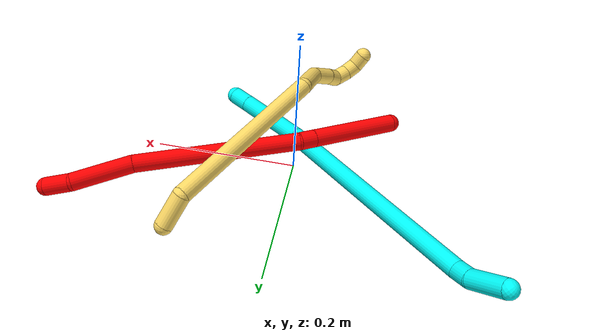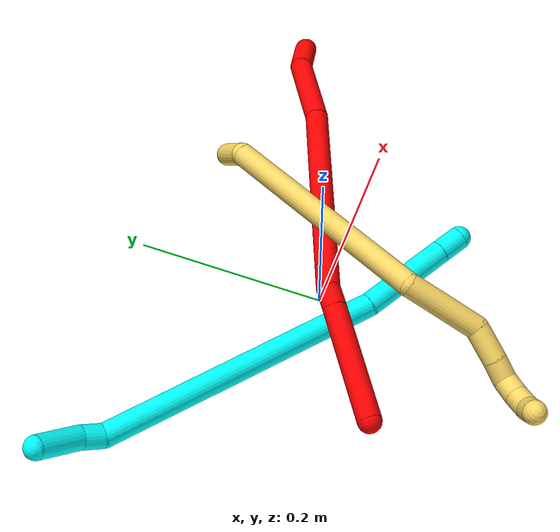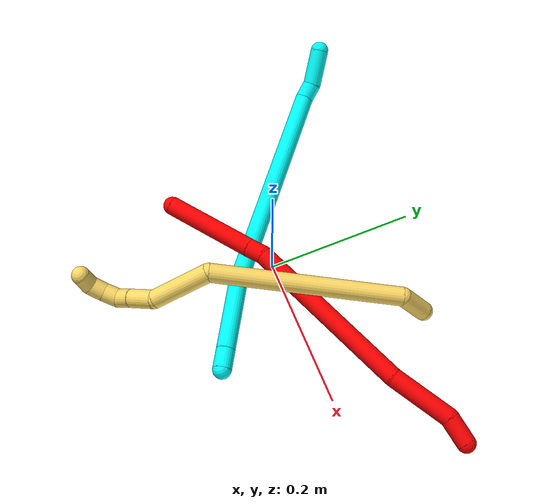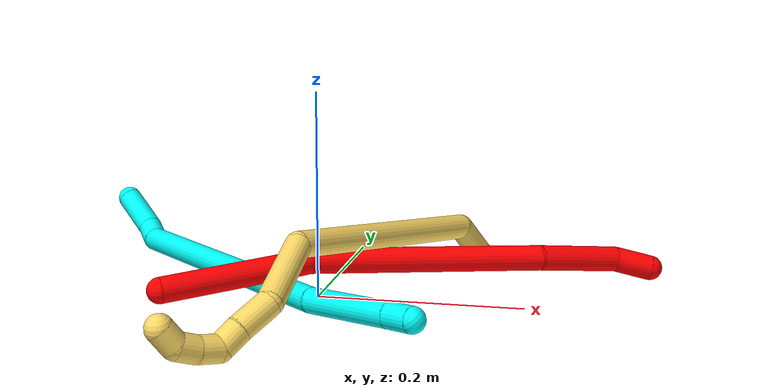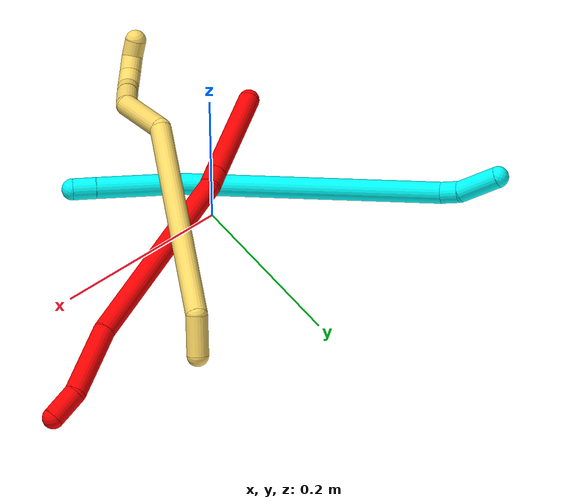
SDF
<sdf version="1.7">
 <world name="default">
  <model name="2">
   <static>0</static>
   <link name="2">
    <collision name="collision-cylinder-e_1_1_4">
     <pose>-0.013069 -0.011242 -0.006573 2.09987 -0.787182 -1.25307</pose>
     <geometry><cylinder><radius>0.0125</radius><length>0.0369</length></cylinder></geometry>
     <surface>
      <friction><ode><mu>1.16</mu><mu2>1.16</mu2><slip1>0</slip1><slip2>0</slip2></ode></friction>
      <contact><ode><kp>1e+06</kp><kd>1</kd><max_vel>0</max_vel><min_depth>0.001</min_depth></ode></contact>
     </surface>
    </collision>
    <visual name="visual-cylinder-e_1_1_4">
     <pose>-0.013069 -0.011242 -0.006573 2.09987 -0.787182 -1.25307</pose>
     <geometry><cylinder><radius>0.0125</radius><length>0.0369</length></cylinder></geometry>
     <material><ambient>1 0 0 1</ambient></material>
    </visual>
    <collision name="collision-cylinder-e_2_4_5">
     <pose>-0.06353 -0.034182 -0.02927 2.51396 -1.08129 -2.15036</pose>
     <geometry><cylinder><radius>0.0125</radius><length>0.084734</length></cylinder></geometry>
     <surface>
      <friction><ode><mu>1.16</mu><mu2>1.16</mu2><slip1>0</slip1><slip2>0</slip2></ode></friction>
      <contact><ode><kp>1e+06</kp><kd>1</kd><max_vel>0</max_vel><min_depth>0.001</min_depth></ode></contact>
     </surface>
    </collision>
    <visual name="visual-cylinder-e_2_4_5">
     <pose>-0.06353 -0.034182 -0.02927 2.51396 -1.08129 -2.15036</pose>
     <geometry><cylinder><radius>0.0125</radius><length>0.084734</length></cylinder></geometry>
     <material><ambient>1 0 0 1</ambient></material>
    </visual>
    <collision name="collision-cylinder-e_3_5_6">
     <pose>-0.202284 -0.091948 -0.075054 2.14281 -1.07525 -1.65954</pose>
     <geometry><cylinder><radius>0.0125</radius><length>0.230446</length></cylinder></geometry>
     <surface>
      <friction><ode><mu>1.16</mu><mu2>1.16</mu2><slip1>0</slip1><slip2>0</slip2></ode></friction>
      <contact><ode><kp>1e+06</kp><kd>1</kd><max_vel>0</max_vel><min_depth>0.001</min_depth></ode></contact>
     </surface>
    </collision>
    <visual name="visual-cylinder-e_3_5_6">
     <pose>-0.202284 -0.091948 -0.075054 2.14281 -1.07525 -1.65954</pose>
     <geometry><cylinder><radius>0.0125</radius><length>0.230446</length></cylinder></geometry>
     <material><ambient>1 0 0 1</ambient></material>
    </visual>
    <collision name="collision-cylinder-e_4_6_7">
     <pose>-0.314603 -0.139613 -0.10736 2.59882 -1.29578 -2.43701</pose>
     <geometry><cylinder><radius>0.0125</radius><length>0.022768</length></cylinder></geometry>
     <surface>
      <friction><ode><mu>1.16</mu><mu2>1.16</mu2><slip1>0</slip1><slip2>0</slip2></ode></friction>
      <contact><ode><kp>1e+06</kp><kd>1</kd><max_vel>0</max_vel><min_depth>0.001</min_depth></ode></contact>
     </surface>
    </collision>
    <visual name="visual-cylinder-e_4_6_7">
     <pose>-0.314603 -0.139613 -0.10736 2.59882 -1.29578 -2.43701</pose>
     <geometry><cylinder><radius>0.0125</radius><length>0.022768</length></cylinder></geometry>
     <material><ambient>1 0 0 1</ambient></material>
    </visual>
    <collision name="collision-cylinder-e_5_7_2">
     <pose>-0.385432 -0.15159 -0.12495 2.53448 -1.27578 -2.34197</pose>
     <geometry><cylinder><radius>0.0125</radius><length>0.125152</length></cylinder></geometry>
     <surface>
      <friction><ode><mu>1.16</mu><mu2>1.16</mu2><slip1>0</slip1><slip2>0</slip2></ode></friction>
      <contact><ode><kp>1e+06</kp><kd>1</kd><max_vel>0</max_vel><min_depth>0.001</min_depth></ode></contact>
     </surface>
    </collision>
    <visual name="visual-cylinder-e_5_7_2">
     <pose>-0.385432 -0.15159 -0.12495 2.53448 -1.27578 -2.34197</pose>
     <geometry><cylinder><radius>0.0125</radius><length>0.125152</length></cylinder></geometry>
     <material><ambient>1 0 0 1</ambient></material>
    </visual>
    <collision name="collision-sphere-2">
     <pose>-0.445305 -0.16197 -0.139893 0 -0 0</pose>
     <geometry><sphere><radius>0.0125</radius></sphere></geometry>
     <surface>
      <friction><ode><mu>1.16</mu><mu2>1.16</mu2><slip1>0</slip1><slip2>0</slip2></ode></friction>
      <contact><ode><kp>1e+06</kp><kd>1</kd><max_vel>0</max_vel><min_depth>0.001</min_depth></ode></contact>
     </surface>
    </collision>
    <visual name="visual-sphere-2">
     <pose>-0.445305 -0.16197 -0.139893 0 -0 0</pose>
     <geometry><sphere><radius>0.0125</radius></sphere></geometry>
     <material><ambient>1 0 0 1</ambient></material>
    </visual>
    <collision name="collision-sphere-7">
     <pose>-0.325559 -0.14121 -0.110007 0 -0 0</pose>
     <geometry><sphere><radius>0.0125</radius></sphere></geometry>
     <surface>
      <friction><ode><mu>1.16</mu><mu2>1.16</mu2><slip1>0</slip1><slip2>0</slip2></ode></friction>
      <contact><ode><kp>1e+06</kp><kd>1</kd><max_vel>0</max_vel><min_depth>0.001</min_depth></ode></contact>
     </surface>
    </collision>
    <visual name="visual-sphere-7">
     <pose>-0.325559 -0.14121 -0.110007 0 -0 0</pose>
     <geometry><sphere><radius>0.0125</radius></sphere></geometry>
     <material><ambient>1 0 0 1</ambient></material>
    </visual>
    <collision name="collision-sphere-6">
     <pose>-0.303647 -0.138017 -0.104713 0 -0 0</pose>
     <geometry><sphere><radius>0.0125</radius></sphere></geometry>
     <surface>
      <friction><ode><mu>1.16</mu><mu2>1.16</mu2><slip1>0</slip1><slip2>0</slip2></ode></friction>
      <contact><ode><kp>1e+06</kp><kd>1</kd><max_vel>0</max_vel><min_depth>0.001</min_depth></ode></contact>
     </surface>
    </collision>
    <visual name="visual-sphere-6">
     <pose>-0.303647 -0.138017 -0.104713 0 -0 0</pose>
     <geometry><sphere><radius>0.0125</radius></sphere></geometry>
     <material><ambient>1 0 0 1</ambient></material>
    </visual>
    <collision name="collision-sphere-5">
     <pose>-0.100921 -0.04588 -0.045394 0 -0 0</pose>
     <geometry><sphere><radius>0.0125</radius></sphere></geometry>
     <surface>
      <friction><ode><mu>1.16</mu><mu2>1.16</mu2><slip1>0</slip1><slip2>0</slip2></ode></friction>
      <contact><ode><kp>1e+06</kp><kd>1</kd><max_vel>0</max_vel><min_depth>0.001</min_depth></ode></contact>
     </surface>
    </collision>
    <visual name="visual-sphere-5">
     <pose>-0.100921 -0.04588 -0.045394 0 -0 0</pose>
     <geometry><sphere><radius>0.0125</radius></sphere></geometry>
     <material><ambient>1 0 0 1</ambient></material>
    </visual>
    <collision name="collision-sphere-1">
     <geometry><sphere><radius>0.0125</radius></sphere></geometry>
     <surface>
      <friction><ode><mu>1.16</mu><mu2>1.16</mu2><slip1>0</slip1><slip2>0</slip2></ode></friction>
      <contact><ode><kp>1e+06</kp><kd>1</kd><max_vel>0</max_vel><min_depth>0.001</min_depth></ode></contact>
     </surface>
    </collision>
    <visual name="visual-sphere-1">
     <geometry><sphere><radius>0.0125</radius></sphere></geometry>
     <material><ambient>1 0 0 1</ambient></material>
    </visual>
    <collision name="collision-sphere-4">
     <pose>-0.026138 -0.022484 -0.013146 0 -0 0</pose>
     <geometry><sphere><radius>0.0125</radius></sphere></geometry>
     <surface>
      <friction><ode><mu>1.16</mu><mu2>1.16</mu2><slip1>0</slip1><slip2>0</slip2></ode></friction>
      <contact><ode><kp>1e+06</kp><kd>1</kd><max_vel>0</max_vel><min_depth>0.001</min_depth></ode></contact>
     </surface>
    </collision>
    <visual name="visual-sphere-4">
     <pose>-0.026138 -0.022484 -0.013146 0 -0 0</pose>
     <geometry><sphere><radius>0.0125</radius></sphere></geometry>
     <material><ambient>1 0 0 1</ambient></material>
    </visual>
    <inertial>
     <pose>-0.215763 -0.093302 -0.076201 0 -0 0</pose>
     <mass>0.5</mass>
     <inertia>
      <ixx>-0.000673</ixx>
      <ixy>0</ixy>
      <ixz>0</ixz>
      <iyy>0.000461</iyy>
      <iyz>0</iyz>
      <izz>0.001566</izz>
     </inertia>
    </inertial>
   </link>
   <pose>0.314262 0.12962 0.012489 -2.79589 -0.3701 0.688477</pose>
  </model>
  <model name="3">
   <static>0</static>
   <link name="3">
    <collision name="collision-cylinder-e_1_1_4">
     <pose>-0.007989 0.009735 -0.005107 -2.05388 -0.628401 0.98626</pose>
     <geometry><cylinder><radius>0.0125</radius><length>0.027179</length></cylinder></geometry>
     <surface>
      <friction><ode><mu>1.16</mu><mu2>1.16</mu2><slip1>0</slip1><slip2>0</slip2></ode></friction>
      <contact><ode><kp>1e+06</kp><kd>1</kd><max_vel>0</max_vel><min_depth>0.001</min_depth></ode></contact>
     </surface>
    </collision>
    <visual name="visual-cylinder-e_1_1_4">
     <pose>-0.007989 0.009735 -0.005107 -2.05388 -0.628401 0.98626</pose>
     <geometry><cylinder><radius>0.0125</radius><length>0.027179</length></cylinder></geometry>
     <material><ambient>0.003922 1 0.996078 1</ambient></material>
    </visual>
    <collision name="collision-cylinder-e_2_4_5">
     <pose>-0.0447 0.054974 -0.028114 -2.0378 -0.625593 0.967303</pose>
     <geometry><cylinder><radius>0.0125</radius><length>0.0981</length></cylinder></geometry>
     <surface>
      <friction><ode><mu>1.16</mu><mu2>1.16</mu2><slip1>0</slip1><slip2>0</slip2></ode></friction>
      <contact><ode><kp>1e+06</kp><kd>1</kd><max_vel>0</max_vel><min_depth>0.001</min_depth></ode></contact>
     </surface>
    </collision>
    <visual name="visual-cylinder-e_2_4_5">
     <pose>-0.0447 0.054974 -0.028114 -2.0378 -0.625593 0.967303</pose>
     <geometry><cylinder><radius>0.0125</radius><length>0.0981</length></cylinder></geometry>
     <material><ambient>0.003922 1 0.996078 1</ambient></material>
    </visual>
    <collision name="collision-cylinder-e_3_5_6">
     <pose>-0.180949 0.182521 -0.09732 -2.0793 -0.795496 1.24169</pose>
     <geometry><cylinder><radius>0.0125</radius><length>0.301106</length></cylinder></geometry>
     <surface>
      <friction><ode><mu>1.16</mu><mu2>1.16</mu2><slip1>0</slip1><slip2>0</slip2></ode></friction>
      <contact><ode><kp>1e+06</kp><kd>1</kd><max_vel>0</max_vel><min_depth>0.001</min_depth></ode></contact>
     </surface>
    </collision>
    <visual name="visual-cylinder-e_3_5_6">
     <pose>-0.180949 0.182521 -0.09732 -2.0793 -0.795496 1.24169</pose>
     <geometry><cylinder><radius>0.0125</radius><length>0.301106</length></cylinder></geometry>
     <material><ambient>0.003922 1 0.996078 1</ambient></material>
    </visual>
    <collision name="collision-cylinder-e_4_6_7">
     <pose>-0.298465 0.277001 -0.154599 -2.75436 -0.997322 2.45038</pose>
     <geometry><cylinder><radius>0.0125</radius><length>0.023784</length></cylinder></geometry>
     <surface>
      <friction><ode><mu>1.16</mu><mu2>1.16</mu2><slip1>0</slip1><slip2>0</slip2></ode></friction>
      <contact><ode><kp>1e+06</kp><kd>1</kd><max_vel>0</max_vel><min_depth>0.001</min_depth></ode></contact>
     </surface>
    </collision>
    <visual name="visual-cylinder-e_4_6_7">
     <pose>-0.298465 0.277001 -0.154599 -2.75436 -0.997322 2.45038</pose>
     <geometry><cylinder><radius>0.0125</radius><length>0.023784</length></cylinder></geometry>
     <material><ambient>0.003922 1 0.996078 1</ambient></material>
    </visual>
    <collision name="collision-cylinder-e_5_7_2">
     <pose>-0.324479 0.285065 -0.178803 -2.84219 -0.698618 2.3564</pose>
     <geometry><cylinder><radius>0.0125</radius><length>0.049831</length></cylinder></geometry>
     <surface>
      <friction><ode><mu>1.16</mu><mu2>1.16</mu2><slip1>0</slip1><slip2>0</slip2></ode></friction>
      <contact><ode><kp>1e+06</kp><kd>1</kd><max_vel>0</max_vel><min_depth>0.001</min_depth></ode></contact>
     </surface>
    </collision>
    <visual name="visual-cylinder-e_5_7_2">
     <pose>-0.324479 0.285065 -0.178803 -2.84219 -0.698618 2.3564</pose>
     <geometry><cylinder><radius>0.0125</radius><length>0.049831</length></cylinder></geometry>
     <material><ambient>0.003922 1 0.996078 1</ambient></material>
    </visual>
    <collision name="collision-sphere-2">
     <pose>-0.340504 0.290692 -0.197033 0 -0 0</pose>
     <geometry><sphere><radius>0.0125</radius></sphere></geometry>
     <surface>
      <friction><ode><mu>1.16</mu><mu2>1.16</mu2><slip1>0</slip1><slip2>0</slip2></ode></friction>
      <contact><ode><kp>1e+06</kp><kd>1</kd><max_vel>0</max_vel><min_depth>0.001</min_depth></ode></contact>
     </surface>
    </collision>
    <visual name="visual-sphere-2">
     <pose>-0.340504 0.290692 -0.197033 0 -0 0</pose>
     <geometry><sphere><radius>0.0125</radius></sphere></geometry>
     <material><ambient>0.003922 1 0.996078 1</ambient></material>
    </visual>
    <collision name="collision-sphere-7">
     <pose>-0.308455 0.279438 -0.160574 0 -0 0</pose>
     <geometry><sphere><radius>0.0125</radius></sphere></geometry>
     <surface>
      <friction><ode><mu>1.16</mu><mu2>1.16</mu2><slip1>0</slip1><slip2>0</slip2></ode></friction>
      <contact><ode><kp>1e+06</kp><kd>1</kd><max_vel>0</max_vel><min_depth>0.001</min_depth></ode></contact>
     </surface>
    </collision>
    <visual name="visual-sphere-7">
     <pose>-0.308455 0.279438 -0.160574 0 -0 0</pose>
     <geometry><sphere><radius>0.0125</radius></sphere></geometry>
     <material><ambient>0.003922 1 0.996078 1</ambient></material>
    </visual>
    <collision name="collision-sphere-6">
     <pose>-0.288476 0.274565 -0.148625 0 -0 0</pose>
     <geometry><sphere><radius>0.0125</radius></sphere></geometry>
     <surface>
      <friction><ode><mu>1.16</mu><mu2>1.16</mu2><slip1>0</slip1><slip2>0</slip2></ode></friction>
      <contact><ode><kp>1e+06</kp><kd>1</kd><max_vel>0</max_vel><min_depth>0.001</min_depth></ode></contact>
     </surface>
    </collision>
    <visual name="visual-sphere-6">
     <pose>-0.288476 0.274565 -0.148625 0 -0 0</pose>
     <geometry><sphere><radius>0.0125</radius></sphere></geometry>
     <material><ambient>0.003922 1 0.996078 1</ambient></material>
    </visual>
    <collision name="collision-sphere-5">
     <pose>-0.073423 0.090478 -0.046015 0 -0 0</pose>
     <geometry><sphere><radius>0.0125</radius></sphere></geometry>
     <surface>
      <friction><ode><mu>1.16</mu><mu2>1.16</mu2><slip1>0</slip1><slip2>0</slip2></ode></friction>
      <contact><ode><kp>1e+06</kp><kd>1</kd><max_vel>0</max_vel><min_depth>0.001</min_depth></ode></contact>
     </surface>
    </collision>
    <visual name="visual-sphere-5">
     <pose>-0.073423 0.090478 -0.046015 0 -0 0</pose>
     <geometry><sphere><radius>0.0125</radius></sphere></geometry>
     <material><ambient>0.003922 1 0.996078 1</ambient></material>
    </visual>
    <collision name="collision-sphere-1">
     <geometry><sphere><radius>0.0125</radius></sphere></geometry>
     <surface>
      <friction><ode><mu>1.16</mu><mu2>1.16</mu2><slip1>0</slip1><slip2>0</slip2></ode></friction>
      <contact><ode><kp>1e+06</kp><kd>1</kd><max_vel>0</max_vel><min_depth>0.001</min_depth></ode></contact>
     </surface>
    </collision>
    <visual name="visual-sphere-1">
     <geometry><sphere><radius>0.0125</radius></sphere></geometry>
     <material><ambient>0.003922 1 0.996078 1</ambient></material>
    </visual>
    <collision name="collision-sphere-4">
     <pose>-0.015977 0.019471 -0.010213 0 -0 0</pose>
     <geometry><sphere><radius>0.0125</radius></sphere></geometry>
     <surface>
      <friction><ode><mu>1.16</mu><mu2>1.16</mu2><slip1>0</slip1><slip2>0</slip2></ode></friction>
      <contact><ode><kp>1e+06</kp><kd>1</kd><max_vel>0</max_vel><min_depth>0.001</min_depth></ode></contact>
     </surface>
    </collision>
    <visual name="visual-sphere-4">
     <pose>-0.015977 0.019471 -0.010213 0 -0 0</pose>
     <geometry><sphere><radius>0.0125</radius></sphere></geometry>
     <material><ambient>0.003922 1 0.996078 1</ambient></material>
    </visual>
    <inertial>
     <pose>-0.16471 0.162818 -0.089575 0 -0 0</pose>
     <mass>0.5</mass>
     <inertia>
      <ixx>0.002101</ixx>
      <ixy>0</ixy>
      <ixz>0</ixz>
      <iyy>0.002619</iyy>
      <iyz>0</iyz>
      <izz>0.000214</izz>
     </inertia>
    </inertial>
   </link>
   <pose>0.114232 -0.116105 0.018968 -2.49892 0.133296 -1.46519</pose>
  </model>
  <model name="5">
   <static>0</static>
   <link name="5">
    <collision name="collision-cylinder-e_1_1_4">
     <pose>-0.009506 -0.006628 0.020079 0.318833 -0.422486 -0.068929</pose>
     <geometry><cylinder><radius>0.0125</radius><length>0.046366</length></cylinder></geometry>
     <surface>
      <friction><ode><mu>1.16</mu><mu2>1.16</mu2><slip1>0</slip1><slip2>0</slip2></ode></friction>
      <contact><ode><kp>1e+06</kp><kd>1</kd><max_vel>0</max_vel><min_depth>0.001</min_depth></ode></contact>
     </surface>
    </collision>
    <visual name="visual-cylinder-e_1_1_4">
     <pose>-0.009506 -0.006628 0.020079 0.318833 -0.422486 -0.068929</pose>
     <geometry><cylinder><radius>0.0125</radius><length>0.046366</length></cylinder></geometry>
     <material><ambient>1 0.858824 0.4 1</ambient></material>
    </visual>
    <collision name="collision-cylinder-e_2_4_5">
     <pose>-0.096998 -0.101756 0.082888 1.12099 -0.670799 -0.430763</pose>
     <geometry><cylinder><radius>0.0125</radius><length>0.250918</length></cylinder></geometry>
     <surface>
      <friction><ode><mu>1.16</mu><mu2>1.16</mu2><slip1>0</slip1><slip2>0</slip2></ode></friction>
      <contact><ode><kp>1e+06</kp><kd>1</kd><max_vel>0</max_vel><min_depth>0.001</min_depth></ode></contact>
     </surface>
    </collision>
    <visual name="visual-cylinder-e_2_4_5">
     <pose>-0.096998 -0.101756 0.082888 1.12099 -0.670799 -0.430763</pose>
     <geometry><cylinder><radius>0.0125</radius><length>0.250918</length></cylinder></geometry>
     <material><ambient>1 0.858824 0.4 1</ambient></material>
    </visual>
    <collision name="collision-cylinder-e_3_5_6">
     <pose>-0.187768 -0.228343 0.118405 1.75794 -0.318534 -0.383043</pose>
     <geometry><cylinder><radius>0.0125</radius><length>0.081635</length></cylinder></geometry>
     <surface>
      <friction><ode><mu>1.16</mu><mu2>1.16</mu2><slip1>0</slip1><slip2>0</slip2></ode></friction>
      <contact><ode><kp>1e+06</kp><kd>1</kd><max_vel>0</max_vel><min_depth>0.001</min_depth></ode></contact>
     </surface>
    </collision>
    <visual name="visual-cylinder-e_3_5_6">
     <pose>-0.187768 -0.228343 0.118405 1.75794 -0.318534 -0.383043</pose>
     <geometry><cylinder><radius>0.0125</radius><length>0.081635</length></cylinder></geometry>
     <material><ambient>1 0.858824 0.4 1</ambient></material>
    </visual>
    <collision name="collision-cylinder-e_4_6_7">
     <pose>-0.213828 -0.278036 0.106691 1.94082 -0.817599 -1.12822</pose>
     <geometry><cylinder><radius>0.0125</radius><length>0.0364</length></cylinder></geometry>
     <surface>
      <friction><ode><mu>1.16</mu><mu2>1.16</mu2><slip1>0</slip1><slip2>0</slip2></ode></friction>
      <contact><ode><kp>1e+06</kp><kd>1</kd><max_vel>0</max_vel><min_depth>0.001</min_depth></ode></contact>
     </surface>
    </collision>
    <visual name="visual-cylinder-e_4_6_7">
     <pose>-0.213828 -0.278036 0.106691 1.94082 -0.817599 -1.12822</pose>
     <geometry><cylinder><radius>0.0125</radius><length>0.0364</length></cylinder></geometry>
     <material><ambient>1 0.858824 0.4 1</ambient></material>
    </visual>
    <collision name="collision-cylinder-e_5_7_8">
     <pose>-0.235218 -0.296733 0.098343 2.06776 -0.788212 -1.21963</pose>
     <geometry><cylinder><radius>0.0125</radius><length>0.022882</length></cylinder></geometry>
     <surface>
      <friction><ode><mu>1.16</mu><mu2>1.16</mu2><slip1>0</slip1><slip2>0</slip2></ode></friction>
      <contact><ode><kp>1e+06</kp><kd>1</kd><max_vel>0</max_vel><min_depth>0.001</min_depth></ode></contact>
     </surface>
    </collision>
    <visual name="visual-cylinder-e_5_7_8">
     <pose>-0.235218 -0.296733 0.098343 2.06776 -0.788212 -1.21963</pose>
     <geometry><cylinder><radius>0.0125</radius><length>0.022882</length></cylinder></geometry>
     <material><ambient>1 0.858824 0.4 1</ambient></material>
    </visual>
    <collision name="collision-cylinder-e_6_8_9">
     <pose>-0.251827 -0.309067 0.098145 0.962949 -0.926226 -0.510411</pose>
     <geometry><cylinder><radius>0.0125</radius><length>0.02126</length></cylinder></geometry>
     <surface>
      <friction><ode><mu>1.16</mu><mu2>1.16</mu2><slip1>0</slip1><slip2>0</slip2></ode></friction>
      <contact><ode><kp>1e+06</kp><kd>1</kd><max_vel>0</max_vel><min_depth>0.001</min_depth></ode></contact>
     </surface>
    </collision>
    <visual name="visual-cylinder-e_6_8_9">
     <pose>-0.251827 -0.309067 0.098145 0.962949 -0.926226 -0.510411</pose>
     <geometry><cylinder><radius>0.0125</radius><length>0.02126</length></cylinder></geometry>
     <material><ambient>1 0.858824 0.4 1</ambient></material>
    </visual>
    <collision name="collision-cylinder-e_7_9_10">
     <pose>-0.267804 -0.318566 0.107137 0.67247 -0.830591 -0.305818</pose>
     <geometry><cylinder><radius>0.0125</radius><length>0.020259</length></cylinder></geometry>
     <surface>
      <friction><ode><mu>1.16</mu><mu2>1.16</mu2><slip1>0</slip1><slip2>0</slip2></ode></friction>
      <contact><ode><kp>1e+06</kp><kd>1</kd><max_vel>0</max_vel><min_depth>0.001</min_depth></ode></contact>
     </surface>
    </collision>
    <visual name="visual-cylinder-e_7_9_10">
     <pose>-0.267804 -0.318566 0.107137 0.67247 -0.830591 -0.305818</pose>
     <geometry><cylinder><radius>0.0125</radius><length>0.020259</length></cylinder></geometry>
     <material><ambient>1 0.858824 0.4 1</ambient></material>
    </visual>
    <collision name="collision-cylinder-e_8_10_2">
     <pose>-0.280024 -0.32311 0.12144 0.032182 -0.486625 -0.007989</pose>
     <geometry><cylinder><radius>0.0125</radius><length>0.02028</length></cylinder></geometry>
     <surface>
      <friction><ode><mu>1.16</mu><mu2>1.16</mu2><slip1>0</slip1><slip2>0</slip2></ode></friction>
      <contact><ode><kp>1e+06</kp><kd>1</kd><max_vel>0</max_vel><min_depth>0.001</min_depth></ode></contact>
     </surface>
    </collision>
    <visual name="visual-cylinder-e_8_10_2">
     <pose>-0.280024 -0.32311 0.12144 0.032182 -0.486625 -0.007989</pose>
     <geometry><cylinder><radius>0.0125</radius><length>0.02028</length></cylinder></geometry>
     <material><ambient>1 0.858824 0.4 1</ambient></material>
    </visual>
    <collision name="collision-sphere-2">
     <pose>-0.284766 -0.323398 0.130398 0 -0 0</pose>
     <geometry><sphere><radius>0.0125</radius></sphere></geometry>
     <surface>
      <friction><ode><mu>1.16</mu><mu2>1.16</mu2><slip1>0</slip1><slip2>0</slip2></ode></friction>
      <contact><ode><kp>1e+06</kp><kd>1</kd><max_vel>0</max_vel><min_depth>0.001</min_depth></ode></contact>
     </surface>
    </collision>
    <visual name="visual-sphere-2">
     <pose>-0.284766 -0.323398 0.130398 0 -0 0</pose>
     <geometry><sphere><radius>0.0125</radius></sphere></geometry>
     <material><ambient>1 0.858824 0.4 1</ambient></material>
    </visual>
    <collision name="collision-sphere-10">
     <pose>-0.275282 -0.322821 0.112481 0 -0 0</pose>
     <geometry><sphere><radius>0.0125</radius></sphere></geometry>
     <surface>
      <friction><ode><mu>1.16</mu><mu2>1.16</mu2><slip1>0</slip1><slip2>0</slip2></ode></friction>
      <contact><ode><kp>1e+06</kp><kd>1</kd><max_vel>0</max_vel><min_depth>0.001</min_depth></ode></contact>
     </surface>
    </collision>
    <visual name="visual-sphere-10">
     <pose>-0.275282 -0.322821 0.112481 0 -0 0</pose>
     <geometry><sphere><radius>0.0125</radius></sphere></geometry>
     <material><ambient>1 0.858824 0.4 1</ambient></material>
    </visual>
    <collision name="collision-sphere-9">
     <pose>-0.260325 -0.31431 0.101793 0 -0 0</pose>
     <geometry><sphere><radius>0.0125</radius></sphere></geometry>
     <surface>
      <friction><ode><mu>1.16</mu><mu2>1.16</mu2><slip1>0</slip1><slip2>0</slip2></ode></friction>
      <contact><ode><kp>1e+06</kp><kd>1</kd><max_vel>0</max_vel><min_depth>0.001</min_depth></ode></contact>
     </surface>
    </collision>
    <visual name="visual-sphere-9">
     <pose>-0.260325 -0.31431 0.101793 0 -0 0</pose>
     <geometry><sphere><radius>0.0125</radius></sphere></geometry>
     <material><ambient>1 0.858824 0.4 1</ambient></material>
    </visual>
    <collision name="collision-sphere-4">
     <pose>-0.019012 -0.013256 0.040158 0 -0 0</pose>
     <geometry><sphere><radius>0.0125</radius></sphere></geometry>
     <surface>
      <friction><ode><mu>1.16</mu><mu2>1.16</mu2><slip1>0</slip1><slip2>0</slip2></ode></friction>
      <contact><ode><kp>1e+06</kp><kd>1</kd><max_vel>0</max_vel><min_depth>0.001</min_depth></ode></contact>
     </surface>
    </collision>
    <visual name="visual-sphere-4">
     <pose>-0.019012 -0.013256 0.040158 0 -0 0</pose>
     <geometry><sphere><radius>0.0125</radius></sphere></geometry>
     <material><ambient>1 0.858824 0.4 1</ambient></material>
    </visual>
    <collision name="collision-sphere-1">
     <geometry><sphere><radius>0.0125</radius></sphere></geometry>
     <surface>
      <friction><ode><mu>1.16</mu><mu2>1.16</mu2><slip1>0</slip1><slip2>0</slip2></ode></friction>
      <contact><ode><kp>1e+06</kp><kd>1</kd><max_vel>0</max_vel><min_depth>0.001</min_depth></ode></contact>
     </surface>
    </collision>
    <visual name="visual-sphere-1">
     <geometry><sphere><radius>0.0125</radius></sphere></geometry>
     <material><ambient>1 0.858824 0.4 1</ambient></material>
    </visual>
    <collision name="collision-sphere-8">
     <pose>-0.24333 -0.303824 0.094497 0 -0 0</pose>
     <geometry><sphere><radius>0.0125</radius></sphere></geometry>
     <surface>
      <friction><ode><mu>1.16</mu><mu2>1.16</mu2><slip1>0</slip1><slip2>0</slip2></ode></friction>
      <contact><ode><kp>1e+06</kp><kd>1</kd><max_vel>0</max_vel><min_depth>0.001</min_depth></ode></contact>
     </surface>
    </collision>
    <visual name="visual-sphere-8">
     <pose>-0.24333 -0.303824 0.094497 0 -0 0</pose>
     <geometry><sphere><radius>0.0125</radius></sphere></geometry>
     <material><ambient>1 0.858824 0.4 1</ambient></material>
    </visual>
    <collision name="collision-sphere-5">
     <pose>-0.174985 -0.190255 0.125617 0 -0 0</pose>
     <geometry><sphere><radius>0.0125</radius></sphere></geometry>
     <surface>
      <friction><ode><mu>1.16</mu><mu2>1.16</mu2><slip1>0</slip1><slip2>0</slip2></ode></friction>
      <contact><ode><kp>1e+06</kp><kd>1</kd><max_vel>0</max_vel><min_depth>0.001</min_depth></ode></contact>
     </surface>
    </collision>
    <visual name="visual-sphere-5">
     <pose>-0.174985 -0.190255 0.125617 0 -0 0</pose>
     <geometry><sphere><radius>0.0125</radius></sphere></geometry>
     <material><ambient>1 0.858824 0.4 1</ambient></material>
    </visual>
    <collision name="collision-sphere-6">
     <pose>-0.200551 -0.26643 0.111193 0 -0 0</pose>
     <geometry><sphere><radius>0.0125</radius></sphere></geometry>
     <surface>
      <friction><ode><mu>1.16</mu><mu2>1.16</mu2><slip1>0</slip1><slip2>0</slip2></ode></friction>
      <contact><ode><kp>1e+06</kp><kd>1</kd><max_vel>0</max_vel><min_depth>0.001</min_depth></ode></contact>
     </surface>
    </collision>
    <visual name="visual-sphere-6">
     <pose>-0.200551 -0.26643 0.111193 0 -0 0</pose>
     <geometry><sphere><radius>0.0125</radius></sphere></geometry>
     <material><ambient>1 0.858824 0.4 1</ambient></material>
    </visual>
    <collision name="collision-sphere-7">
     <pose>-0.227105 -0.289641 0.102189 0 -0 0</pose>
     <geometry><sphere><radius>0.0125</radius></sphere></geometry>
     <surface>
      <friction><ode><mu>1.16</mu><mu2>1.16</mu2><slip1>0</slip1><slip2>0</slip2></ode></friction>
      <contact><ode><kp>1e+06</kp><kd>1</kd><max_vel>0</max_vel><min_depth>0.001</min_depth></ode></contact>
     </surface>
    </collision>
    <visual name="visual-sphere-7">
     <pose>-0.227105 -0.289641 0.102189 0 -0 0</pose>
     <geometry><sphere><radius>0.0125</radius></sphere></geometry>
     <material><ambient>1 0.858824 0.4 1</ambient></material>
    </visual>
    <inertial>
     <pose>-0.139463 -0.161936 0.088497 0 -0 0</pose>
     <mass>0.5</mass>
     <inertia>
      <ixx>0.000522</ixx>
      <ixy>0</ixy>
      <ixz>0</ixz>
      <iyy>0.000366</iyy>
      <iyz>0</iyz>
      <izz>0.001852</izz>
     </inertia>
    </inertial>
   </link>
   <pose>0.137649 0.157387 0.01149 0.198559 -0.12827 0.228257</pose>
  </model>
 </world>
</sdf>
